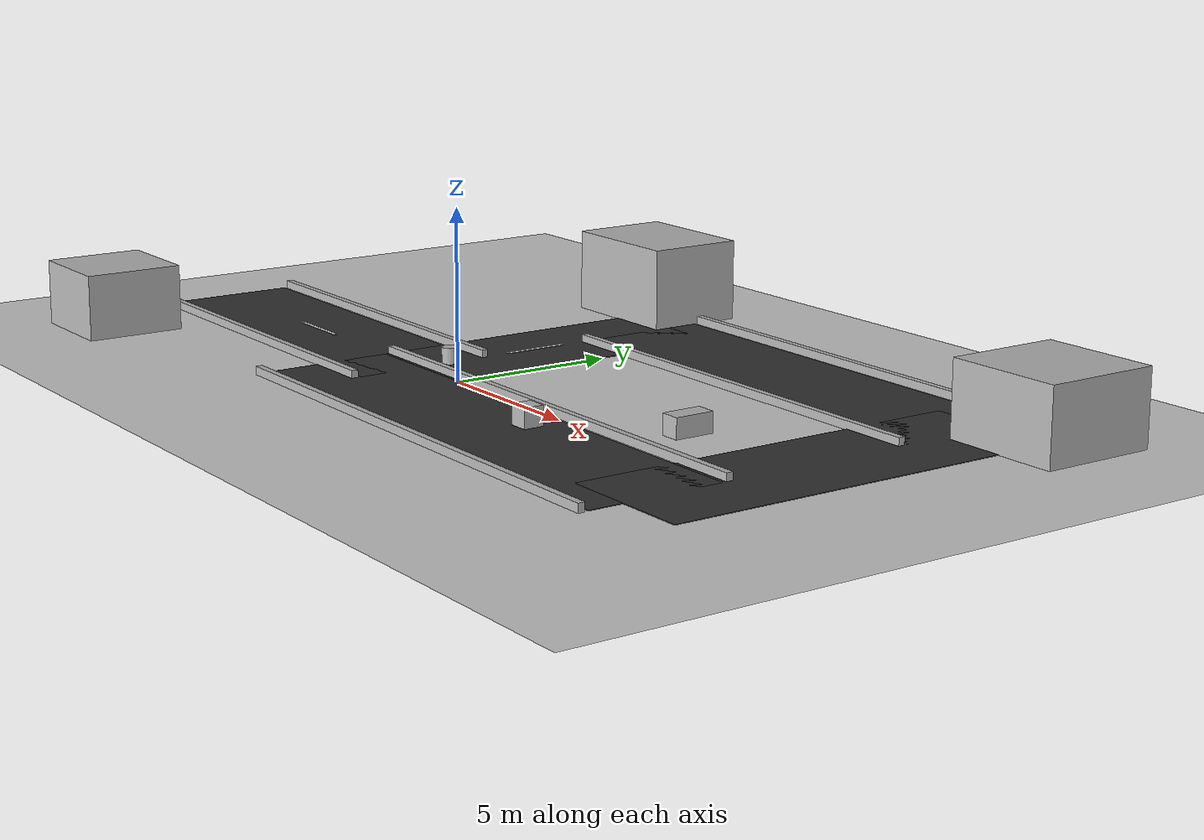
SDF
<?xml version="1.0" ?>
<sdf version="1.6">
  <world name="city_street">
    <!-- Sun + ground -->
    <include>
      <uri>model://sun</uri>
    </include>
    <include>
      <uri>model://ground_plane</uri>
    </include>
    <physics type="ode">
      <!-- Bigger step + lower update rate = much faster -->
      <max_step_size>0.02</max_step_size>
      <real_time_update_rate>100</real_time_update_rate>
      <real_time_factor>1.0</real_time_factor>

      <!-- Solver tuning for speed -->
      <ode>
        <solver>
          <type>quick</type>
          <iters>20</iters>
          <sor>1.3</sor>
        </solver>
        <constraints>
          <cfm>0.0</cfm>
          <erp>0.2</erp>
        </constraints>
      </ode>
    </physics>
    <!-- =========================
         STREET (blocks with turns)
         ========================= -->

    <!-- Road material (just in visuals) -->
    <!-- Block A: horizontal -->
    <model name="road_block_A">
      <static>true</static>
      <pose>-8 0 0.01 0 0 0</pose>
      <link name="link">
        <collision name="collision">
          <geometry><box><size>12 4 0.02</size></box></geometry>
        </collision>
        <visual name="visual">
          <geometry><box><size>12 4 0.02</size></box></geometry>
          <material>
            <ambient>0.15 0.15 0.15 1</ambient>
            <diffuse>0.20 0.20 0.20 1</diffuse>
          </material>
        </visual>
      </link>
    </model>

    <!-- Block B: vertical (turn) -->
    <model name="road_block_B">
      <static>true</static>
      <pose>-2 4 0.01 0 0 1.5708</pose> <!-- rotated 90deg -->
      <link name="link">
        <collision name="collision">
          <geometry><box><size>10 4 0.02</size></box></geometry>
        </collision>
        <visual name="visual">
          <geometry><box><size>10 4 0.02</size></box></geometry>
          <material>
            <ambient>0.15 0.15 0.15 1</ambient>
            <diffuse>0.20 0.20 0.20 1</diffuse>
          </material>
        </visual>
      </link>
    </model>

    <!-- Block C: horizontal (after turn) -->
    <model name="road_block_C">
      <static>true</static>
      <pose>5 8 0.01 0 0 0</pose>
      <link name="link">
        <collision name="collision">
          <geometry><box><size>14 4 0.02</size></box></geometry>
        </collision>
        <visual name="visual">
          <geometry><box><size>14 4 0.02</size></box></geometry>
          <material>
            <ambient>0.15 0.15 0.15 1</ambient>
            <diffuse>0.20 0.20 0.20 1</diffuse>
          </material>
        </visual>
      </link>
    </model>

    <!-- Block D: vertical (second turn down) -->
    <model name="road_block_D">
      <static>true</static>
      <pose>12 3 0.01 0 0 1.5708</pose> <!-- rotated 90deg -->
      <link name="link">
        <collision name="collision">
          <geometry><box><size>12 4 0.02</size></box></geometry>
        </collision>
        <visual name="visual">
          <geometry><box><size>12 4 0.02</size></box></geometry>
          <material>
            <ambient>0.15 0.15 0.15 1</ambient>
            <diffuse>0.20 0.20 0.20 1</diffuse>
          </material>
        </visual>
      </link>
    </model>

    <!-- Block E: horizontal (back to start area) -->
    <model name="road_block_E">
      <static>true</static>
      <pose>4 -2 0.01 0 0 0</pose>
      <link name="link">
        <collision name="collision">
          <geometry><box><size>16 4 0.02</size></box></geometry>
        </collision>
        <visual name="visual">
          <geometry><box><size>16 4 0.02</size></box></geometry>
          <material>
            <ambient>0.15 0.15 0.15 1</ambient>
            <diffuse>0.20 0.20 0.20 1</diffuse>
          </material>
        </visual>
      </link>
    </model>

    <!-- Optional lane marks (small white blocks) -->
    <model name="lane_mark_1">
      <static>true</static>
      <pose>-8 0 0.03 0 0 0</pose>
      <link name="link">
        <visual name="visual">
          <geometry><box><size>2 0.12 0.01</size></box></geometry>
          <material>
            <ambient>0.9 0.9 0.9 1</ambient>
            <diffuse>0.95 0.95 0.95 1</diffuse>
          </material>
        </visual>
      </link>
    </model>

    <model name="lane_mark_2">
      <static>true</static>
      <pose>-2 4 0.03 0 0 1.5708</pose>
      <link name="link">
        <visual name="visual">
          <geometry><box><size>2 0.12 0.01</size></box></geometry>
          <material>
            <ambient>0.9 0.9 0.9 1</ambient>
            <diffuse>0.95 0.95 0.95 1</diffuse>
          </material>
        </visual>
      </link>
    </model>

    <!-- =========================
         SMALLER BUILDINGS (blocks)
         ========================= -->

    <model name="building_1">
      <static>true</static>
      <pose>-12 -5 1.0 0 0 0</pose>
      <link name="link">
        <collision name="collision">
          <geometry><box><size>3 3 2</size></box></geometry>
        </collision>
        <visual name="visual">
          <geometry><box><size>3 3 2</size></box></geometry>
        </visual>
      </link>
    </model>

    <model name="building_2">
      <static>true</static>
      <pose>-4 10 1.25 0 0 0</pose>
      <link name="link">
        <collision name="collision">
          <geometry><box><size>4 3 2.5</size></box></geometry>
        </collision>
        <visual name="visual">
          <geometry><box><size>4 3 2.5</size></box></geometry>
        </visual>
      </link>
    </model>

    <model name="building_3">
      <static>true</static>
      <pose>14 9 1.1 0 0 0</pose>
      <link name="link">
        <collision name="collision">
          <geometry><box><size>3.5 3.5 2.2</size></box></geometry>
        </collision>
        <visual name="visual">
          <geometry><box><size>3.5 3.5 2.2</size></box></geometry>
        </visual>
      </link>
    </model>

    <!-- Obstacles (for testing) -->
    <model name="obstacle_barrel_1">
      <static>true</static>
      <pose>-2 1 0.25 0 0 0</pose>
      <link name="link">
        <collision name="collision">
          <geometry><cylinder><radius>0.25</radius><length>0.5</length></cylinder></geometry>
        </collision>
        <visual name="visual">
          <geometry><cylinder><radius>0.25</radius><length>0.5</length></cylinder></geometry>
        </visual>
      </link>
    </model>

    <model name="obstacle_box_1">
      <static>true</static>
      <pose>5 -1 0.3 0 0 0</pose>
      <link name="link">
        <collision name="collision">
          <geometry><box><size>0.6 0.6 0.6</size></box></geometry>
        </collision>
        <visual name="visual">
          <geometry><box><size>0.6 0.6 0.6</size></box></geometry>
        </visual>
      </link>
    </model>

    <model name="obstacle_box_2">
      <static>true</static>
      <pose>8 2 0.3 0 0 0</pose>
      <link name="link">
        <collision name="collision">
          <geometry><box><size>0.6 1.2 0.6</size></box></geometry>
        </collision>
        <visual name="visual">
          <geometry><box><size>0.6 1.2 0.6</size></box></geometry>
        </visual>
      </link>
    </model>

    <!-- =========================
         CURBS (keep robot in street)
         ========================= -->

    <!-- Curbs for road_block_A (centered at -8,0 with size 12x4) -->
    <model name="curb_A_left">
      <static>true</static>
      <pose>-8 2.2 0.12 0 0 0</pose>
      <link name="link">
        <collision name="collision">
          <geometry><box><size>12 0.2 0.25</size></box></geometry>
        </collision>
        <visual name="visual">
          <geometry><box><size>12 0.2 0.25</size></box></geometry>
        </visual>
      </link>
    </model>

    <model name="curb_A_right">
      <static>true</static>
      <pose>-8 -2.2 0.12 0 0 0</pose>
      <link name="link">
        <collision name="collision">
          <geometry><box><size>12 0.2 0.25</size></box></geometry>
        </collision>
        <visual name="visual">
          <geometry><box><size>12 0.2 0.25</size></box></geometry>
        </visual>
      </link>
    </model>

    <!-- Curbs for road_block_C (centered at 5,8 with size 14x4) -->
    <model name="curb_C_left">
      <static>true</static>
      <pose>5 10.2 0.12 0 0 0</pose>
      <link name="link">
        <collision name="collision">
          <geometry><box><size>14 0.2 0.25</size></box></geometry>
        </collision>
        <visual name="visual">
          <geometry><box><size>14 0.2 0.25</size></box></geometry>
        </visual>
      </link>
    </model>

    <model name="curb_C_right">
      <static>true</static>
      <pose>5 5.8 0.12 0 0 0</pose>
      <link name="link">
        <collision name="collision">
          <geometry><box><size>14 0.2 0.25</size></box></geometry>
        </collision>
        <visual name="visual">
          <geometry><box><size>14 0.2 0.25</size></box></geometry>
        </visual>
      </link>
    </model>

    <!-- Curbs for road_block_E (centered at 4,-2 with size 16x4) -->
    <model name="curb_E_left">
      <static>true</static>
      <pose>4 0.2 0.12 0 0 0</pose>
      <link name="link">
        <collision name="collision">
          <geometry><box><size>16 0.2 0.25</size></box></geometry>
        </collision>
        <visual name="visual">
          <geometry><box><size>16 0.2 0.25</size></box></geometry>
        </visual>
      </link>
    </model>

    <model name="curb_E_right">
      <static>true</static>
      <pose>4 -4.2 0.12 0 0 0</pose>
      <link name="link">
        <collision name="collision">
          <geometry><box><size>16 0.2 0.25</size></box></geometry>
        </collision>
        <visual name="visual">
          <geometry><box><size>16 0.2 0.25</size></box></geometry>
        </visual>
      </link>
    </model>

  </world>
</sdf>
